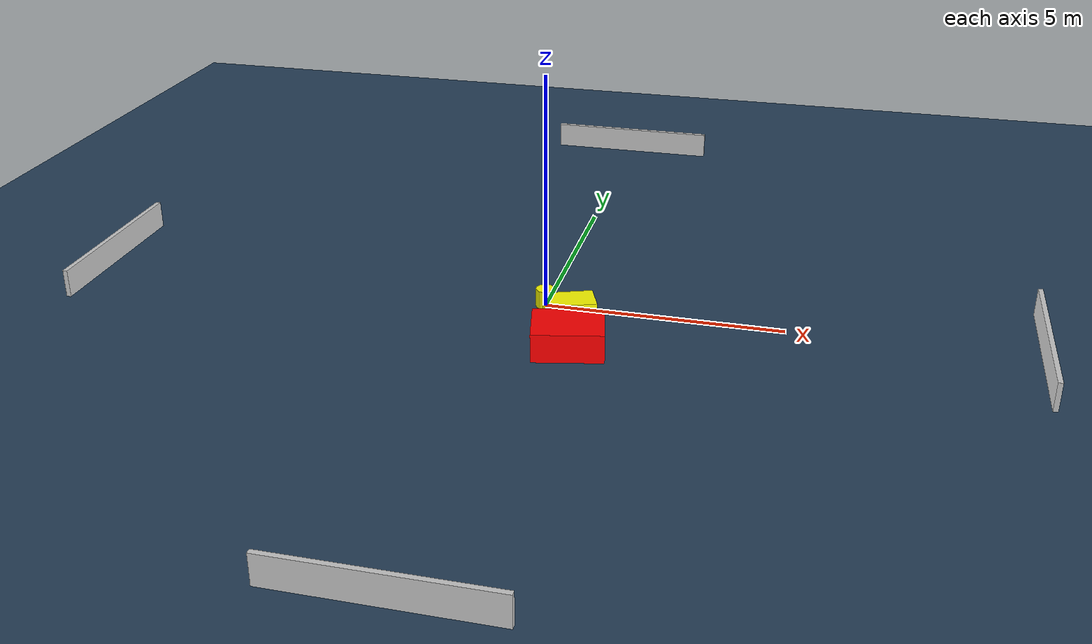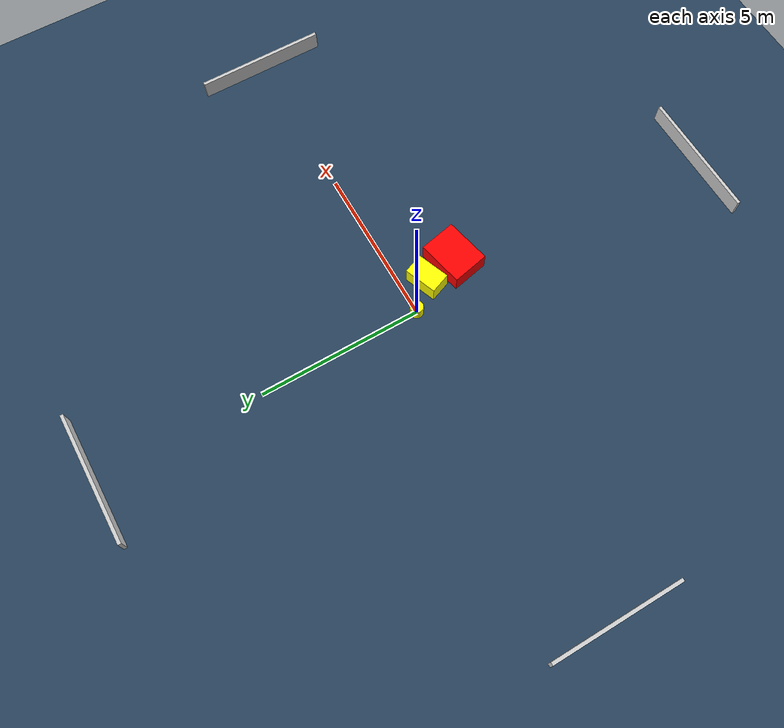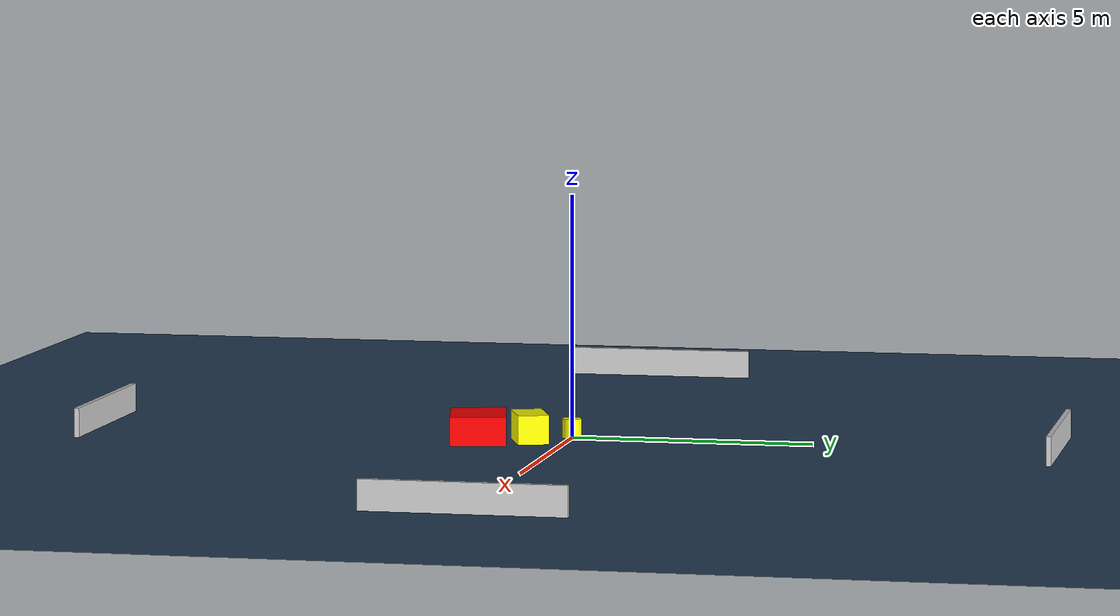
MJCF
<?xml version="1.0" ?>
<mujoco model="generated_environment">
  <option timestep="0.01" integrator="RK4" cone="elliptic"/>
  <default>
    <geom density="1"/>
  </default>
  <asset>
    <texture builtin="gradient" height="3072" name="skybox" rgb1="0.3 0.5 0.7" rgb2="0 0 0" type="skybox" width="512"/>
    <texture builtin="checker" height="300" name="groundplane" rgb1="0.2 0.3 0.4" rgb2="0.1 0.2 0.3" type="2d" width="300"/>
    <material name="groundplane" reflectance="0.2" texrepeat="5 5" texture="groundplane"/>
  </asset>
  <worldbody>
    <light dir="0 0 -1" directional="true" pos="0 0 1.5"/>
    <geom condim="3" friction="0.5 0.005 0.001" material="groundplane" name="floor" pos="0 0 0" size="0 0 0.05" type="plane"/>
    <body name="walls">
      <geom name="wall_1" condim="4" pos="-10.0 0.0 0.3" rgba="0.800000011920929 0.800000011920929 0.800000011920929 1.0" size="0.05 2.0 0.3" type="box"/>
      <geom name="wall_2" condim="4" pos="10.0 0.0 0.3" rgba="0.800000011920929 0.800000011920929 0.800000011920929 1.0" size="0.05 2.0 0.3" type="box"/>
      <geom name="wall_3" condim="4" pos="0.0 -10.0 0.3" rgba="0.800000011920929 0.800000011920929 0.800000011920929 1.0" size="2.0 0.05 0.3" type="box"/>
      <geom name="wall_4" condim="4" pos="0.0 10.0 0.3" rgba="0.800000011920929 0.800000011920929 0.800000011920929 1.0" size="2.0 0.05 0.3" type="box"/>
    </body>
    <body name="robot">
      <joint name="joint_x" type="slide" pos="0 0 0" axis="1 0 0"/>
      <joint name="joint_y" type="slide" pos="0 0 0" axis="0 1 0"/>
      <geom name="robot" type="cylinder" pos="0.0 0.0 0.2" size="0.2 0.2 0.0" mass="5.0" friction="1.0 0.005 0.0001" condim="4" rgba="1.0 1.0 0.0 1.0"/>
    </body>
    <body name="obstacle_1_movable">
      <geom name="obstacle_1_movable" condim="4" pos="0.6893763257292468 -0.7392568036788011 0.3" euler="0 0 20.873562623510075" friction="0.0 0.005 0.001" rgba="1.0 1.0 0.0 1.0" size="0.5110567545730325 0.3197061656227347 0.3" type="box" mass="0.1"/>
      <joint type="free"/>
    </body>
    <body name="obstacle_2_static">
      <geom name="obstacle_2_static" condim="4" pos="0.8861793433288624 -1.7769972310132753 0.3" euler="0 0 192.1054908145891" friction="0.0 0.005 0.001" rgba="1.0 0.0 0.0 1.0" size="0.7219519081537225 0.5714147725784801 0.3" type="box"/>
    </body>
  </worldbody>
  <actuator>
    <motor name="actuator_x" joint="joint_x" gear="1" ctrlrange="-1 1"/>
    <motor name="actuator_y" joint="joint_y" gear="1" ctrlrange="-1 1"/>
  </actuator>
</mujoco>
